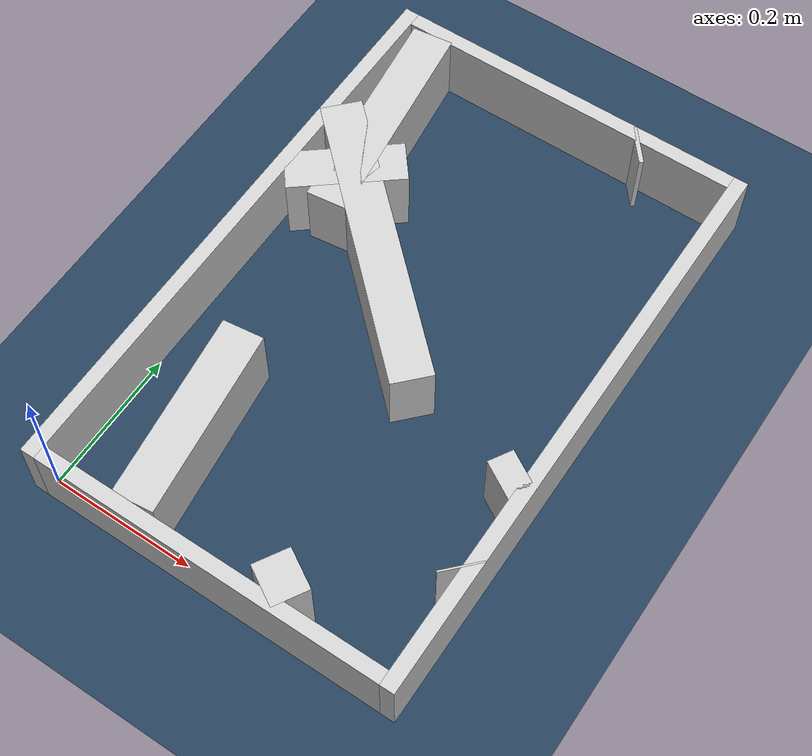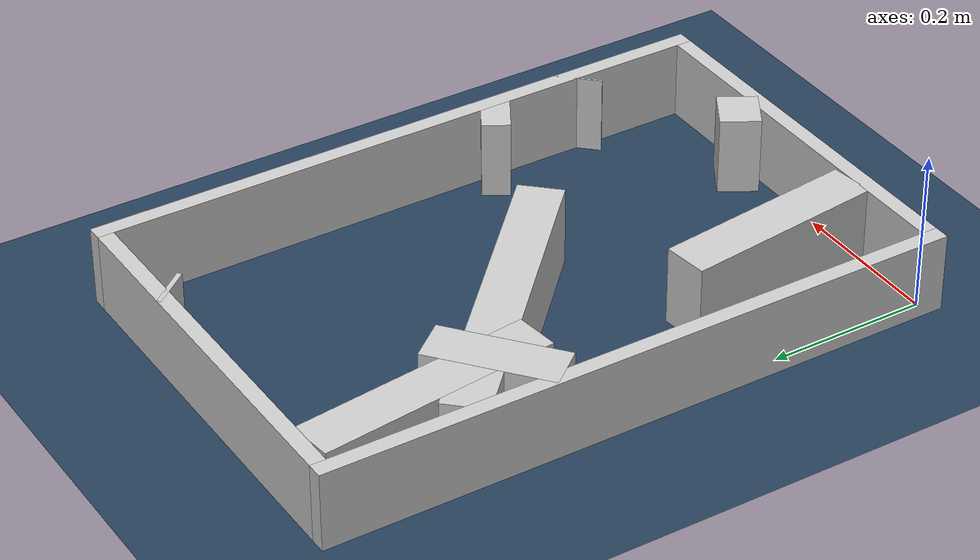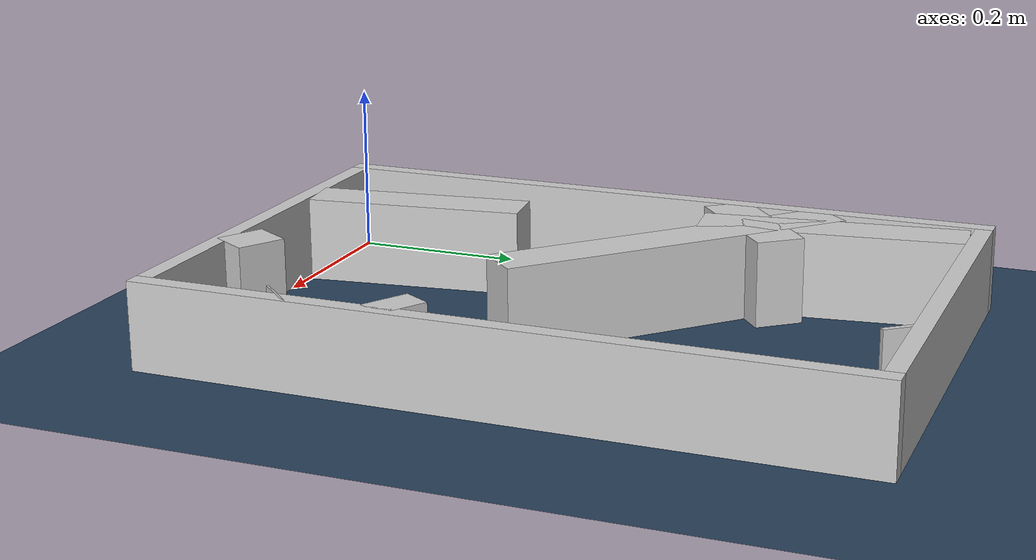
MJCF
<?xml version="1.0" ?>
<mujoco model="generated_real_template">
  <compiler angle="degree"/>
  <option timestep="0.002" integrator="implicitfast" iterations="100" cone="elliptic"/>
  <default>
    <geom density="1"/>
  </default>
  <asset>
    <texture builtin="gradient" height="3072" rgb1="0.3 0.5 0.7" rgb2="0 0 0" type="skybox" width="512"/>
    <texture builtin="checker" height="300" mark="edge" markrgb="0.8 0.8 0.8" name="groundplane" rgb1="0.2 0.3 0.4" rgb2="0.1 0.2 0.3" type="2d" width="300"/>
    <material name="groundplane" reflectance="0.2" texrepeat="5 5" texture="groundplane" texuniform="true"/>
  </asset>
  <worldbody>
    <light dir="0 0 -1" directional="true" pos="0 0 1.5"/>
    <geom name="floor" type="plane" condim="4" friction="0.5 0.005 0.001" material="groundplane" size="0 0 0.05"/>
    <body name="walls">
      <geom name="wall_boundary_left" type="box" condim="4" friction="1.0 0.005 0.0001" rgba="0.8 0.8 0.8 1" pos="-0.010000 0.387500 0.050000" euler="0 0 0.000000" size="0.010000 0.407500 0.050000"/>
      <geom name="wall_boundary_right" type="box" condim="4" friction="1.0 0.005 0.0001" rgba="0.8 0.8 0.8 1" pos="0.500000 0.387500 0.050000" euler="0 0 0.000000" size="0.010000 0.407500 0.050000"/>
      <geom name="wall_boundary_bottom" type="box" condim="4" friction="1.0 0.005 0.0001" rgba="0.8 0.8 0.8 1" pos="0.245000 -0.010000 0.050000" euler="0 0 0.000000" size="0.245000 0.010000 0.050000"/>
      <geom name="wall_boundary_top" type="box" condim="4" friction="1.0 0.005 0.0001" rgba="0.8 0.8 0.8 1" pos="0.245000 0.785000 0.050000" euler="0 0 0.000000" size="0.245000 0.010000 0.050000"/>
      <geom name="wall_inner_1_1" type="box" condim="4" friction="1.0 0.005 0.0001" rgba="0.8 0.8 0.8 1" pos="0.327569 0.021705 0.050000" euler="0 0 59.419915" size="0.025211 0.028500 0.050000"/>
      <geom name="wall_inner_1_2" type="box" condim="4" friction="1.0 0.005 0.0001" rgba="0.8 0.8 0.8 1" pos="0.476441 0.273633 0.050000" euler="0 0 59.419915" size="0.017733 0.028500 0.050000"/>
      <geom name="wall_inner_2_1" type="box" condim="4" friction="1.0 0.005 0.0001" rgba="0.8 0.8 0.8 1" pos="0.360163 0.770931 0.050000" euler="0 0 -141.043535" size="0.003031 0.028500 0.050000"/>
      <geom name="wall_inner_2_2" type="box" condim="4" friction="1.0 0.005 0.0001" rgba="0.8 0.8 0.8 1" pos="0.062156 0.529984 0.050000" euler="0 0 -141.043535" size="0.079930 0.028500 0.050000"/>
      <geom name="wall_inner_3_1" type="box" condim="4" friction="1.0 0.005 0.0001" rgba="0.8 0.8 0.8 1" pos="0.489150 0.145502 0.050000" euler="0 0 136.601679" size="0.001170 0.028500 0.050000"/>
      <geom name="wall_inner_3_2" type="box" condim="4" friction="1.0 0.005 0.0001" rgba="0.8 0.8 0.8 1" pos="0.155104 0.461375 0.050000" euler="0 0 136.601679" size="0.213467 0.028500 0.050000"/>
      <geom name="wall_inner_4_1" type="box" condim="4" friction="1.0 0.005 0.0001" rgba="0.8 0.8 0.8 1" pos="0.054946 0.622842 0.050000" euler="0 0 -83.057877" size="0.153282 0.028500 0.050000"/>
      <geom name="wall_inner_4_2" type="box" condim="4" friction="1.0 0.005 0.0001" rgba="0.8 0.8 0.8 1" pos="0.115059 0.129135 0.050000" euler="0 0 -83.057877" size="0.130089 0.028500 0.050000"/>
    </body>
  </worldbody>
</mujoco>
